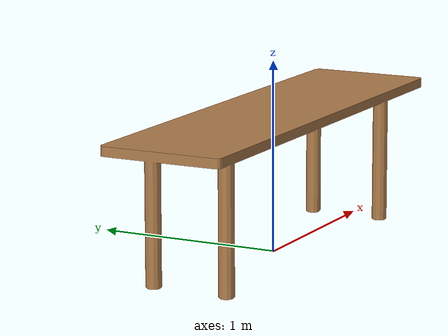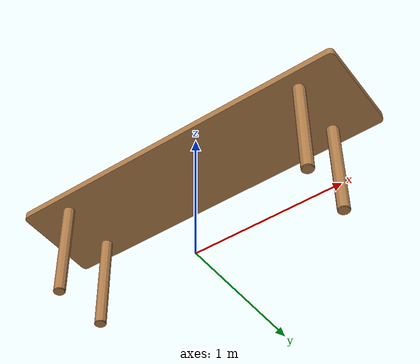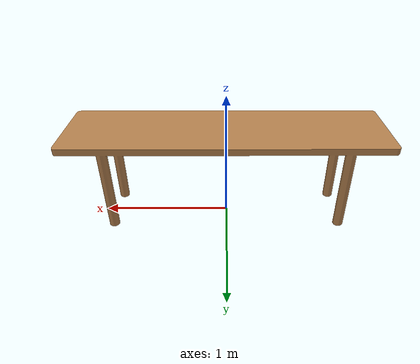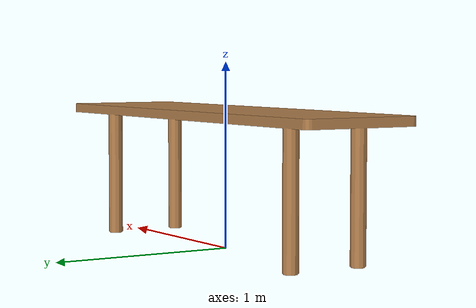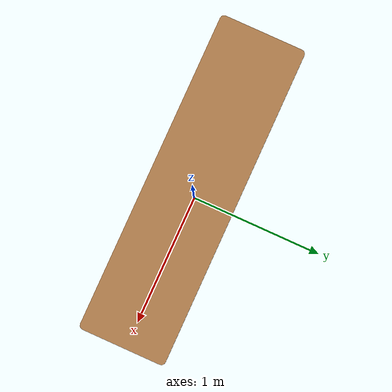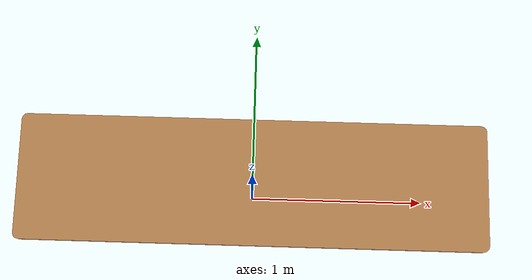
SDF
<sdf version='1.7'>
  <model name='Officedesk_D'>
    <link name='Officedesk_D'>
      <inertial>
        <pose>-0 -0 0.66745 0 -0 0</pose>
        <mass>91.412</mass>
        <inertia>
          <ixx>5.5021</ixx>
          <ixy>-2.9138e-15</ixy>
          <ixz>-1.1263e-16</ixz>
          <iyy>50.739</iyy>
          <iyz>-1.8553e-16</iyz>
          <izz>51.731</izz>
        </inertia>
      </inertial>
      <collision name='Officedesk_D_collision'>
        <pose>0 0 0 0 -0 0</pose>
        <geometry>
          <mesh>
            <scale>1 1 1</scale>
            <uri>model://Officedesk_D/meshes/Officedesk_D.STL</uri>
          </mesh>
        </geometry>
      </collision>
      <visual name='Officedesk_D_visual'>
        <pose>0 0 0 0 -0 0</pose>
        <geometry>
          <mesh>
            <scale>1 1 1</scale>
            <uri>model://Officedesk_D/meshes/Officedesk_D.STL</uri>
          </mesh>
        </geometry>
        <material>
          <script>
            <uri>file://media/materials/scripts/gazebo.material</uri>
            <name>Gazebo/Wood</name>
          </script>
        </material>
      </visual>
    </link>
  </model>
</sdf>
